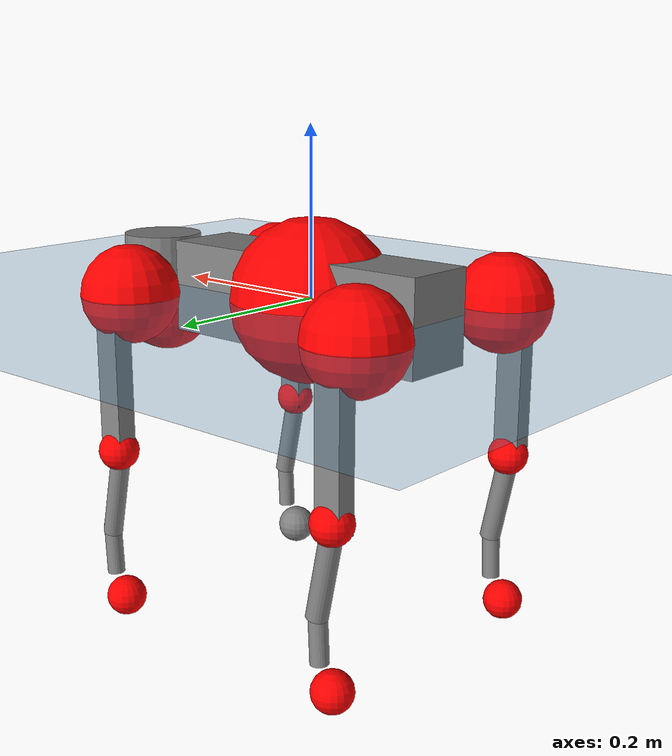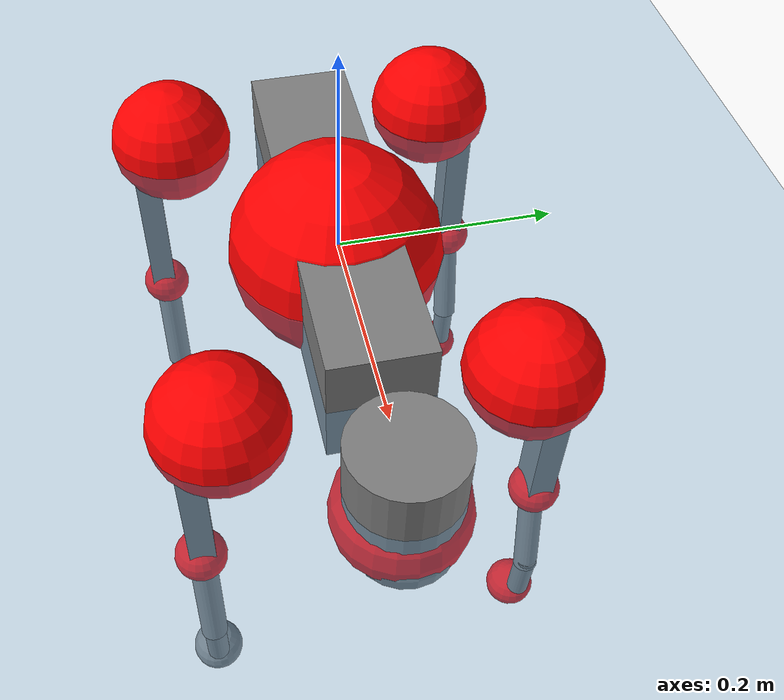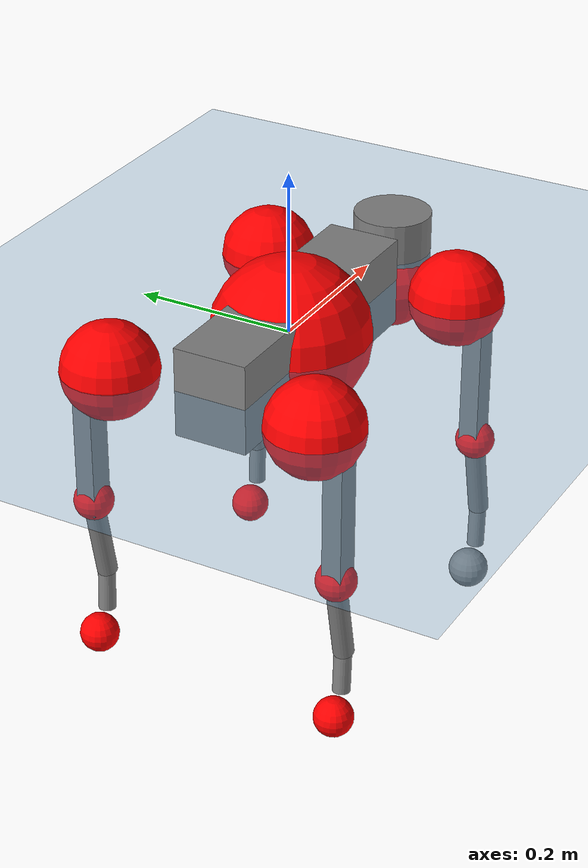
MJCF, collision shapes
<mujoco model="go2">
  <compiler angle="radian" assetdir="assets" balanceinertia="true" inertiafromgeom="false"/>

  <option timestep="0.005" density="1.2" viscosity="2e-05"/>

  <size nkey="1"/>

  <visual>
    <quality shadowsize="8192"/>
    <map shadowclip="0.5"/>
  </visual>

  <default>
    <default class="/">
      <geom contype="0" conaffinity="0" group="1" solref="-1000 -80"/>
      <site size="0.01 0.005 0.005" group="5"/>
      <general forcelimited="true" biastype="affine" gainprm="20" biasprm="0 -20 -0.5"/>
      <default class="go2">
        <joint armature="0.01" damping="0.01" frictionloss="0.2"/>
        <geom condim="1" margin="0.001"/>
        <default class="visual">
          <geom type="mesh" group="2"/>
        </default>
        <default class="collision">
          <geom group="3"/>
          <default class="foot">
            <geom size="0.022 0 0" condim="6" priority="1" friction="0.8 0.02 0.01" solimp="0.015 1 0.022"/>
          </default>
        </default>
        <default class="reward_collision_sphere">
          <geom group="5" rgba="1 0 0 1"/>
        </default>
      </default>
    </default>
  </default>

  <asset>
    <texture type="skybox" colorspace="auto" name="//unnamed_texture_0" builtin="gradient" rgb1="0.95 0.95 0.95" rgb2="0.95 0.95 0.95" width="100" height="600"/>
    <texture type="2d" colorspace="auto" name="texplane" builtin="checker" rgb1="0.345 0.575 0.748" rgb2="0.345 0.575 0.748" markrgb="1 1 1" width="512" height="512"/>
    <material name="MatPlane" class="/" texture="texplane" texuniform="true" texrepeat="2 2" specular="0.9"/>
    <material name="metal" class="/" rgba="0.9 0.95 0.95 1"/>
    <material name="black" class="/" rgba="0 0 0 1"/>
    <material name="white" class="/"/>
    <material name="gray" class="/" rgba="0.671705 0.692426 0.77427 1"/>
    <mesh name="base_0" class="/" file="base_0.obj"/>
    <mesh name="base_1" class="/" file="base_1.obj"/>
    <mesh name="base_2" class="/" file="base_2.obj"/>
    <mesh name="base_3" class="/" file="base_3.obj"/>
    <mesh name="base_4" class="/" file="base_4.obj"/>
    <mesh name="hip_0" class="/" file="hip_0.obj"/>
    <mesh name="hip_1" class="/" file="hip_1.obj"/>
    <mesh name="thigh_0" class="/" file="thigh_0.obj"/>
    <mesh name="thigh_1" class="/" file="thigh_1.obj"/>
    <mesh name="thigh_mirror_0" class="/" file="thigh_mirror_0.obj"/>
    <mesh name="thigh_mirror_1" class="/" file="thigh_mirror_1.obj"/>
    <mesh name="calf_0" class="/" file="calf_0.obj"/>
    <mesh name="calf_1" class="/" file="calf_1.obj"/>
    <mesh name="calf_mirror_0" class="/" file="calf_mirror_0.obj"/>
    <mesh name="calf_mirror_1" class="/" file="calf_mirror_1.obj"/>
    <mesh name="foot" class="/" file="foot.obj"/>
  </asset>

  <worldbody>
    <geom name="floor" class="/" size="100 100 0.125" type="plane" group="0" material="MatPlane"/>
    <light name="toplight_shadow" class="/" pos="0 0 5" dir="0.0990148 0.0990148 -0.990148" type="directional" ambient="0.04 0.04 0.04" diffuse="0.55 0.55 0.55" specular="0.12 0.12 0.12"/>
    <light name="toplight_fill" class="/" pos="0 0 5" dir="0.0990148 0.0990148 -0.990148" type="directional" castshadow="false" ambient="0.04 0.04 0.04" diffuse="0.3 0.3 0.3" specular="0.08 0.08 0.08"/>
    <body name="trunk" childclass="go2" pos="2.34992e-05 -0.00232646 -0.00255732" quat="1 0.000594132 -0.000335355 -0.000436709">
      <inertial pos="0.0197968 0.000595749 -0.00428074" quat="-0.00371301 0.719934 0.00609793 0.694006" mass="6.69454" diaginertia="0.0676386 0.175565 0.0143812"/>
      <joint name="//unnamed_joint_0" type="free" armature="0" damping="0" frictionloss="0"/>
      <geom name="//unnamed_geom_1" class="visual" material="black" mesh="base_0"/>
      <geom name="//unnamed_geom_2" class="visual" material="black" mesh="base_1"/>
      <geom name="//unnamed_geom_3" class="visual" material="black" mesh="base_2"/>
      <geom name="//unnamed_geom_4" class="visual" material="white" mesh="base_3"/>
      <geom name="//unnamed_geom_5" class="visual" material="gray" mesh="base_4"/>
      <geom name="trunk_1" class="collision" size="0.183954 0.0457197 0.0557438" type="box"/>
      <geom name="trunk_2" class="collision" size="0.0488981 0.0440082" pos="0.260746 0 0.00895435" type="cylinder"/>
      <geom name="trunk_3" class="collision" size="0.0459642" pos="0.268065 0 -0.0537261"/>
      <geom name="//unnamed_geom_9" class="reward_collision_sphere" size="0.0977961"/>
      <geom name="//unnamed_geom_10" class="reward_collision_sphere" size="0.0586777" pos="0.256172 0 -0.0402946"/>
      <site name="imu" pos="-0.0278725 0.0121318 0.0290711" size="0.00977961"/>
      <camera name="track" pos="0 -2.2471 0" quat="0.707107 0.707107 0 0" mode="trackcom"/>
      <camera name="ego_camera" pos="0.285449 0 0.0402946" quat="-0.5 -0.5 0.5 0.5"/>
      <body name="FL_hip" pos="0.174249 0.0495358 0.00287001" quat="1 -2.15243e-06 -1.06888e-05 6.43793e-07">
        <inertial pos="-0.0043284 -0.000370913 -0.0029498" quat="0.498514 0.495678 0.504691 0.501072" mass="0.642991" diaginertia="0.000571552 0.00107575 0.00028969"/>
        <joint name="FL_hip_joint" pos="0 0 0" axis="0.999952 -0.00688413 -0.00701728" range="-1.03138 1.02607" armature="0.0107353" damping="0" frictionloss="0.221779"/>
        <geom name="//unnamed_geom_11" class="visual" material="metal" mesh="hip_0"/>
        <geom name="//unnamed_geom_12" class="visual" material="gray" mesh="hip_1"/>
        <geom name="//unnamed_geom_13" class="collision" size="0.0449862 0.0195592" pos="0 0.0898839 0" quat="0.707107 0.707107 0 0" type="cylinder"/>
        <geom name="//unnamed_geom_14" class="reward_collision_sphere" size="0.0586777" pos="0 0.0786484 0"/>
        <body name="FL_thigh" pos="-0.000944019 0.107402 0.0029891" quat="1 -0.000603611 -3.01644e-05 4.01315e-06">
          <inertial pos="-0.00347296 -0.0253869 -0.0284583" quat="0.828484 0.0830888 -0.016727 0.553561" mass="1.05803" diaginertia="0.0038493 0.0106972 0.000490587"/>
          <joint name="FL_thigh_joint" pos="0 0 0" axis="0.0090435 0.999933 0.0072649" range="-1.60075 3.5277" armature="0.0107558" damping="0.00586381" frictionloss="0.22284"/>
          <geom name="//unnamed_geom_15" class="visual" material="metal" mesh="thigh_0"/>
          <geom name="//unnamed_geom_16" class="visual" material="gray" mesh="thigh_1"/>
          <geom name="//unnamed_geom_17" class="collision" size="0.104153 0.01198 0.0166253" pos="0 0 -0.0953639" quat="0.707107 0 0.707107 0" type="box"/>
          <body name="FL_calf" pos="-0.000734691 0.000358584 -0.190703" quat="0.999999 -0.000448476 0.000192596 0.00118966">
            <inertial pos="0.00840799 0.00220962 -0.128595" quat="0.708378 -0.000920134 -0.00716178 0.705796" mass="0.231168" diaginertia="0.000929757 0.0027143 2.9664e-05"/>
            <joint name="FL_calf_joint" pos="0 0 0" axis="0.000150635 1 0.000154476" stiffness="8.56763e-05" range="-2.7154 -0.865896" armature="0.00828605" damping="0.00467893" frictionloss="0.19524"/>
            <geom name="//unnamed_geom_18" class="visual" material="gray" mesh="calf_0"/>
            <geom name="//unnamed_geom_19" class="visual" material="black" mesh="calf_1"/>
            <geom name="FL_calf0" class="collision" size="0.0117355 0.0586777" pos="0.00731919 0 -0.0537261" quat="0.994493 0 -0.104807 0" type="cylinder"/>
            <geom name="//unnamed_geom_21" class="collision" size="0.0107576 0.0317837" pos="0.018298 0 -0.132524" quat="0.999688 0 0.0249974 0" type="cylinder"/>
            <geom name="//unnamed_geom_22" class="visual" pos="0 0 -0.190728" quat="1 0 0 0" material="black" mesh="foot"/>
            <geom name="FL_foot" class="foot" size="0.0222651" pos="-0.0018298 0 -0.190728"/>
            <geom name="//unnamed_geom_24" class="reward_collision_sphere" size="0.024449"/>
            <geom name="//unnamed_geom_25" class="reward_collision_sphere" size="0.024449" pos="-0.0018298 0 -0.190728"/>
            <site name="FL_foot" class="foot" pos="-0.0018298 0 -0.190728" size="0.00977961"/>
          </body>
        </body>
      </body>
      <body name="FR_hip" pos="0.176624 -0.0515426 0.00149115" quat="0.999999 -0.000649533 -0.00100971 -0.000551051">
        <inertial pos="-0.00328001 -0.000452403 -0.000652837" quat="0.501016 0.50371 0.496159 0.499085" mass="0.640128" diaginertia="0.000581413 0.00108291 0.000275189"/>
        <joint name="FR_hip_joint" pos="0 0 0" axis="0.999991 -0.00250549 0.00330633" range="-0.994295 1.05263" armature="0.00998215" damping="0.00478572" frictionloss="0.194041"/>
        <geom name="//unnamed_geom_26" class="visual" pos="0 1.98723e-09 8.52363e-08" quat="4.63268e-05 1 0 0" material="metal" mesh="hip_0"/>
        <geom name="//unnamed_geom_27" class="visual" pos="0 3.22153e-09 -2.10822e-07" quat="4.63268e-05 1 0 0" material="gray" mesh="hip_1"/>
        <geom name="//unnamed_geom_28" class="collision" size="0.0449862 0.0195592" pos="0 -0.0898839 0" quat="0.707107 0.707107 0 0" type="cylinder"/>
        <geom name="//unnamed_geom_29" class="reward_collision_sphere" size="0.0586777" pos="0 -0.0786484 0"/>
        <body name="FR_thigh" pos="-0.000469564 -0.109125 0.000873783" quat="1 -0.000100249 -4.24894e-05 0.000270725">
          <inertial pos="-0.00557327 0.0256297 -0.0310916" quat="0.551542 -0.0201125 0.0849115 0.82957" mass="1.0552" diaginertia="0.00369403 0.00979946 0.000480304"/>
          <joint name="FR_thigh_joint" pos="0 0 0" axis="-0.0134269 -0.999909 -0.000867873" range="-3.5308 1.51695" armature="0.00958433" damping="0.00949994" frictionloss="0.222028"/>
          <geom name="//unnamed_geom_30" class="visual" material="metal" mesh="thigh_mirror_0"/>
          <geom name="//unnamed_geom_31" class="visual" material="gray" mesh="thigh_mirror_1"/>
          <geom name="//unnamed_geom_32" class="collision" size="0.104153 0.01198 0.0166253" pos="0 0 -0.0953639" quat="0.707107 0 0.707107 0" type="box"/>
          <body name="FR_calf" pos="0.0024744 -0.00175547 -0.190009" quat="1 -7.55249e-05 6.32819e-05 9.42378e-05">
            <inertial pos="0.00851625 0.000291219 -0.128743" quat="0.70345 -0.0045769 0.00184667 0.710728" mass="0.234902" diaginertia="0.00098846 0.00259617 3.07814e-05"/>
            <joint name="FR_calf_joint" pos="0 0 0" axis="0.00164513 -0.999998 0.000602752" range="0.848883 2.73276" armature="0.00932196" damping="0.0229967" frictionloss="0.210485"/>
            <geom name="//unnamed_geom_33" class="visual" material="gray" mesh="calf_mirror_0"/>
            <geom name="//unnamed_geom_34" class="visual" material="black" mesh="calf_mirror_1"/>
            <geom name="FR_calf0" class="collision" size="0.0127135 0.0586777" pos="0.00914899 0 -0.0537261" quat="0.995004 0 -0.0998334 0" type="cylinder"/>
            <geom name="//unnamed_geom_36" class="collision" size="0.0107576 0.0317837" pos="0.018298 0 -0.132524" quat="0.999688 0 0.0249974 0" type="cylinder"/>
            <geom name="//unnamed_geom_37" class="visual" pos="0 0 -0.190728" quat="1 0 0 0" material="black" mesh="foot"/>
            <geom name="FR_foot" class="foot" size="0.0250118" pos="-0.0018298 0 -0.190728"/>
            <geom name="//unnamed_geom_39" class="reward_collision_sphere" size="0.024449"/>
            <geom name="//unnamed_geom_40" class="reward_collision_sphere" size="0.024449" pos="-0.0018298 0 -0.190728"/>
            <site name="FR_foot" class="foot" pos="-0.0018298 0 -0.190728" size="0.00977961"/>
          </body>
        </body>
      </body>
      <body name="RL_hip" pos="-0.179672 0.0553892 0.00301583" quat="1 0.000145017 -5.64384e-06 -0.000668833">
        <inertial pos="0.00528317 0.00226937 -4.16586e-05" quat="0.505887 0.498421 0.496369 0.499273" mass="0.636031" diaginertia="0.000560414 0.00108221 0.000267389"/>
        <joint name="RL_hip_joint" pos="0 0 0" axis="-0.999672 -0.00769406 0.0244199" stiffness="0.010615" range="-1.06326 1.04152" armature="0.00997893" damping="0.0135322" frictionloss="0.220122"/>
        <geom name="//unnamed_geom_41" class="visual" pos="-1.69559e-10 0 -3.32375e-08" quat="4.63268e-05 0 1 0" material="metal" mesh="hip_0"/>
        <geom name="//unnamed_geom_42" class="visual" pos="-2.74876e-10 0 -2.94769e-08" quat="4.63268e-05 0 1 0" material="gray" mesh="hip_1"/>
        <geom name="//unnamed_geom_43" class="collision" size="0.0449862 0.0195592" pos="0 0.0898839 0" quat="0.707107 0.707107 0 0" type="cylinder"/>
        <geom name="//unnamed_geom_44" class="reward_collision_sphere" size="0.0586777" pos="0 0.0786484 0"/>
        <body name="RL_thigh" pos="8.79291e-05 0.110325 0.00210014" quat="1 -9.77219e-06 1.78499e-05 3.1875e-05">
          <inertial pos="-0.00257484 -0.0253072 -0.0298815" quat="0.829584 0.0827145 -0.0248391 0.551662" mass="1.05627" diaginertia="0.00389389 0.0101961 0.000518859"/>
          <joint name="RL_thigh_joint" pos="0 0 0" axis="5.82813e-05 1 -0.000907699" range="-0.522952 4.56633" armature="0.00869148" damping="0.00834779" frictionloss="0.172645"/>
          <geom name="//unnamed_geom_45" class="visual" material="metal" mesh="thigh_0"/>
          <geom name="//unnamed_geom_46" class="visual" material="gray" mesh="thigh_1"/>
          <geom name="//unnamed_geom_47" class="collision" size="0.104153 0.01198 0.0166253" pos="0 0 -0.0953639" quat="0.707107 0 0.707107 0" type="box"/>
          <body name="RL_calf" pos="0.00146793 0.000828067 -0.187176" quat="1 7.3172e-05 1.40233e-05 -5.80578e-07">
            <inertial pos="0.00550534 -0.000235714 -0.123913" quat="0.71215 0.00139535 -0.00459826 0.702011" mass="0.227594" diaginertia="0.000951509 0.00258863 3.09568e-05"/>
            <joint name="RL_calf_joint" pos="0 0 0" axis="0.00426396 0.999989 -0.00197519" stiffness="0.00283176" range="-2.75772 -0.835359" armature="0.00857901" damping="0.00738406" frictionloss="0.204269"/>
            <geom name="//unnamed_geom_48" class="visual" material="gray" mesh="calf_0"/>
            <geom name="//unnamed_geom_49" class="visual" material="black" mesh="calf_1"/>
            <geom name="RL_calf0" class="collision" size="0.0127135 0.0586777" pos="0.00914899 0 -0.0537261" quat="0.995004 0 -0.0998334 0" type="cylinder"/>
            <geom name="//unnamed_geom_51" class="collision" size="0.0107576 0.0317837" pos="0.018298 0 -0.132524" quat="0.999688 0 0.0249974 0" type="cylinder"/>
            <geom name="//unnamed_geom_52" class="visual" pos="0 0 -0.190728" quat="1 0 0 0" material="black" mesh="foot"/>
            <geom name="RL_foot" class="foot" size="0.021857" pos="-0.0018298 0 -0.190728"/>
            <geom name="//unnamed_geom_54" class="reward_collision_sphere" size="0.024449"/>
            <geom name="//unnamed_geom_55" class="reward_collision_sphere" size="0.024449" pos="-0.0018298 0 -0.190728"/>
            <site name="RL_foot" class="foot" pos="-0.0018298 0 -0.190728" size="0.00977961"/>
          </body>
        </body>
      </body>
      <body name="RR_hip" pos="-0.177999 -0.0514697 0.00197744" quat="0.999999 0.00116279 0.000615205 0.000214628">
        <inertial pos="0.00461616 -0.000478321 -0.000371035" quat="0.499218 0.498099 0.495516 0.507092" mass="0.637405" diaginertia="0.000591228 0.0011116 0.00026972"/>
        <joint name="RR_hip_joint" pos="0 0 0" axis="-0.999998 0.000433167 -0.00170627" range="-1.03672 1.05497" armature="0.00986111" damping="0.00423253" frictionloss="0.184849"/>
        <geom name="//unnamed_geom_56" class="visual" pos="1.76783e-10 1.98723e-09 -1.18474e-07" quat="2.14617e-09 4.63268e-05 4.63268e-05 -1" material="metal" mesh="hip_0"/>
        <geom name="//unnamed_geom_57" class="visual" pos="2.57009e-10 3.22153e-09 1.81345e-07" quat="2.14617e-09 4.63268e-05 4.63268e-05 -1" material="gray" mesh="hip_1"/>
        <geom name="//unnamed_geom_58" class="collision" size="0.0449862 0.0195592" pos="0 -0.0898839 0" quat="0.707107 0.707107 0 0" type="cylinder"/>
        <geom name="//unnamed_geom_59" class="reward_collision_sphere" size="0.0586777" pos="0 -0.0786484 0"/>
        <body name="RR_thigh" pos="-5.58884e-05 -0.109074 -0.000898822" quat="0.999999 -0.00102553 -0.000262433 0.000499059">
          <inertial pos="-0.00362754 0.0224727 -0.0302406" quat="0.552643 -0.0202644 0.0842225 0.828904" mass="1.00794" diaginertia="0.00357366 0.0101231 0.000486104"/>
          <joint name="RR_thigh_joint" pos="0 0 0" axis="-0.00302983 -0.999977 -0.00602519" range="-4.55026 0.577258" armature="0.0110713" damping="0.00632109" frictionloss="0.178843"/>
          <geom name="//unnamed_geom_60" class="visual" material="metal" mesh="thigh_mirror_0"/>
          <geom name="//unnamed_geom_61" class="visual" material="gray" mesh="thigh_mirror_1"/>
          <geom name="//unnamed_geom_62" class="collision" size="0.104153 0.01198 0.0166253" pos="0 0 -0.0953639" quat="0.707107 0 0.707107 0" type="box"/>
          <body name="RR_calf" pos="0.00117946 0.00238212 -0.190925" quat="1 -3.1388e-05 1.31857e-05 -1.44553e-05">
            <inertial pos="0.004691 0.000269768 -0.123985" quat="0.707211 0.00308662 -0.00730572 0.706958" mass="0.224635" diaginertia="0.000991802 0.00255769 3.16495e-05"/>
            <joint name="RR_calf_joint" pos="0 0 0" axis="-0.0113213 -0.999931 -0.00311807" range="0.881066 2.69914" armature="0.0087766" damping="0.0151561" frictionloss="0.212691"/>
            <geom name="//unnamed_geom_63" class="visual" material="gray" mesh="calf_mirror_0"/>
            <geom name="//unnamed_geom_64" class="visual" material="black" mesh="calf_mirror_1"/>
            <geom name="RR_calf0" class="collision" size="0.0127135 0.0586777" pos="0.00914899 0 -0.0537261" quat="0.995004 0 -0.0998334 0" type="cylinder"/>
            <geom name="//unnamed_geom_66" class="collision" size="0.0107576 0.0317837" pos="0.018298 0 -0.132524" quat="0.999688 0 0.0249974 0" type="cylinder"/>
            <geom name="//unnamed_geom_67" class="visual" pos="0 0 -0.190728" quat="1 0 0 0" material="black" mesh="foot"/>
            <geom name="RR_foot" class="foot" size="0.0213425" pos="-0.0018298 0 -0.190728"/>
            <geom name="//unnamed_geom_69" class="reward_collision_sphere" size="0.024449"/>
            <geom name="//unnamed_geom_70" class="reward_collision_sphere" size="0.024449" pos="-0.0018298 0 -0.190728"/>
            <site name="RR_foot" class="foot" pos="-0.0018298 0 -0.190728" size="0.00977961"/>
          </body>
        </body>
      </body>
    </body>
  </worldbody>

  <contact>
    <pair class="/" geom1="floor" geom2="FL_foot" name="//unnamed_contact_0"/>
    <pair class="/" geom1="floor" geom2="FR_foot" name="//unnamed_contact_1"/>
    <pair class="/" geom1="floor" geom2="RL_foot" name="//unnamed_contact_2"/>
    <pair class="/" geom1="floor" geom2="RR_foot" name="//unnamed_contact_3"/>
  </contact>

  <actuator>
    <general name="FL_hip" class="/" joint="FL_hip_joint" forcerange="-23.9027 23.9027" gainprm="19.7151" biasprm="0 -19.7151 -0.488413"/>
    <general name="FL_thigh" class="/" joint="FL_thigh_joint" forcerange="-20.7896 20.7896" gainprm="19.7151" biasprm="0 -19.7151 -0.488413"/>
    <general name="FL_calf" class="/" joint="FL_calf_joint" forcerange="-45.1545 45.1545" gainprm="19.7151" biasprm="0 -19.7151 -0.488413"/>
    <general name="FR_hip" class="/" joint="FR_hip_joint" forcerange="-22.4521 22.4521" gainprm="19.7151" biasprm="0 -19.7151 -0.488413"/>
    <general name="FR_thigh" class="/" joint="FR_thigh_joint" forcerange="-22.8484 22.8484" gainprm="19.7151" biasprm="0 -19.7151 -0.488413"/>
    <general name="FR_calf" class="/" joint="FR_calf_joint" forcerange="-40.8264 40.8264" gainprm="19.7151" biasprm="0 -19.7151 -0.488413"/>
    <general name="RL_hip" class="/" joint="RL_hip_joint" forcerange="-23.4873 23.4873" gainprm="19.7151" biasprm="0 -19.7151 -0.488413"/>
    <general name="RL_thigh" class="/" joint="RL_thigh_joint" forcerange="-23.6367 23.6367" gainprm="19.7151" biasprm="0 -19.7151 -0.488413"/>
    <general name="RL_calf" class="/" joint="RL_calf_joint" forcerange="-43.4982 43.4982" gainprm="19.7151" biasprm="0 -19.7151 -0.488413"/>
    <general name="RR_hip" class="/" joint="RR_hip_joint" forcerange="-23.1365 23.1365" gainprm="19.7151" biasprm="0 -19.7151 -0.488413"/>
    <general name="RR_thigh" class="/" joint="RR_thigh_joint" forcerange="-21.363 21.363" gainprm="19.7151" biasprm="0 -19.7151 -0.488413"/>
    <general name="RR_calf" class="/" joint="RR_calf_joint" forcerange="-45.3374 45.3374" gainprm="19.7151" biasprm="0 -19.7151 -0.488413"/>
  </actuator>

  <sensor>
    <gyro site="imu" name="imu_angular_velocity"/>
    <velocimeter site="imu" name="imu_linear_velocity"/>
    <framelinvel objtype="site" objname="FL_foot" name="FL_foot_global_linear_velocity"/>
    <framelinvel objtype="site" objname="FR_foot" name="FR_foot_global_linear_velocity"/>
    <framelinvel objtype="site" objname="RL_foot" name="RL_foot_global_linear_velocity"/>
    <framelinvel objtype="site" objname="RR_foot" name="RR_foot_global_linear_velocity"/>
  </sensor>

  <keyframe>
    <key name="home" qpos="0 0 0.325 1 0 0 0 0.1 0.8 -1.5 -0.1 -0.8 1.5 -0.1 0.8 -1.5 0.1 -0.8 1.5"/>
  </keyframe>
</mujoco>
